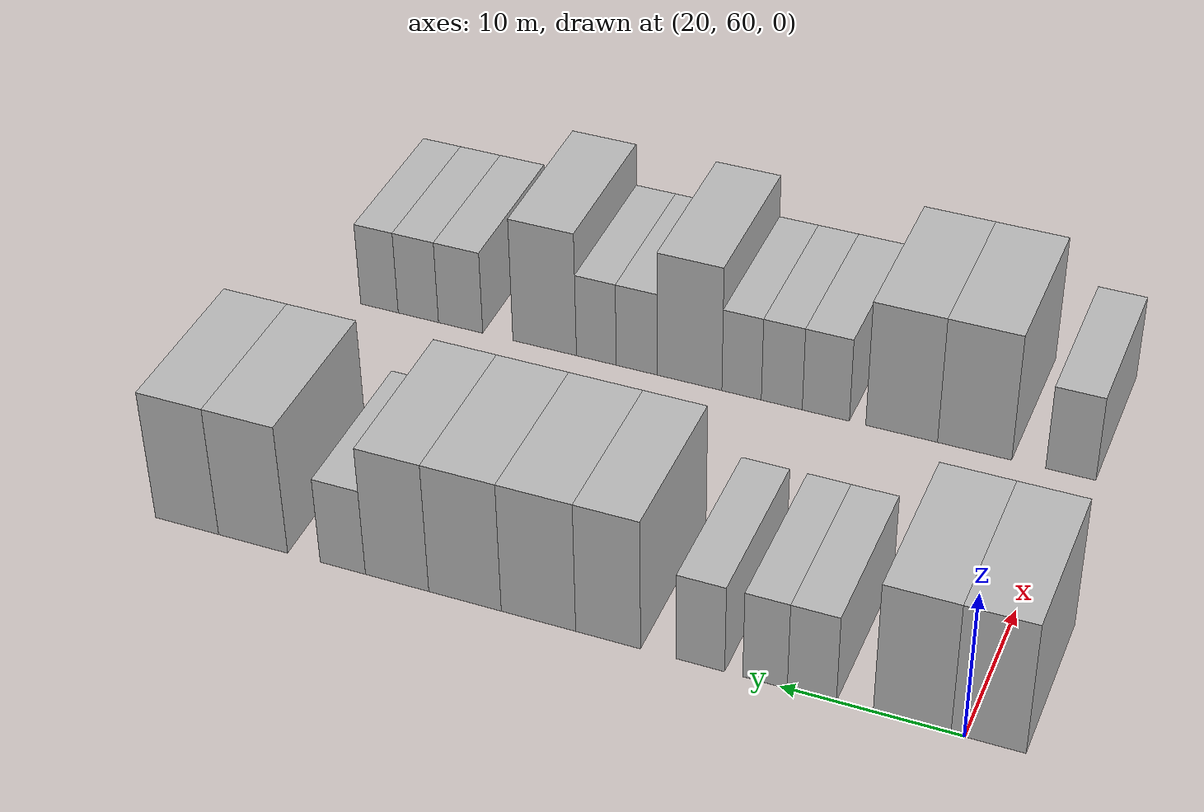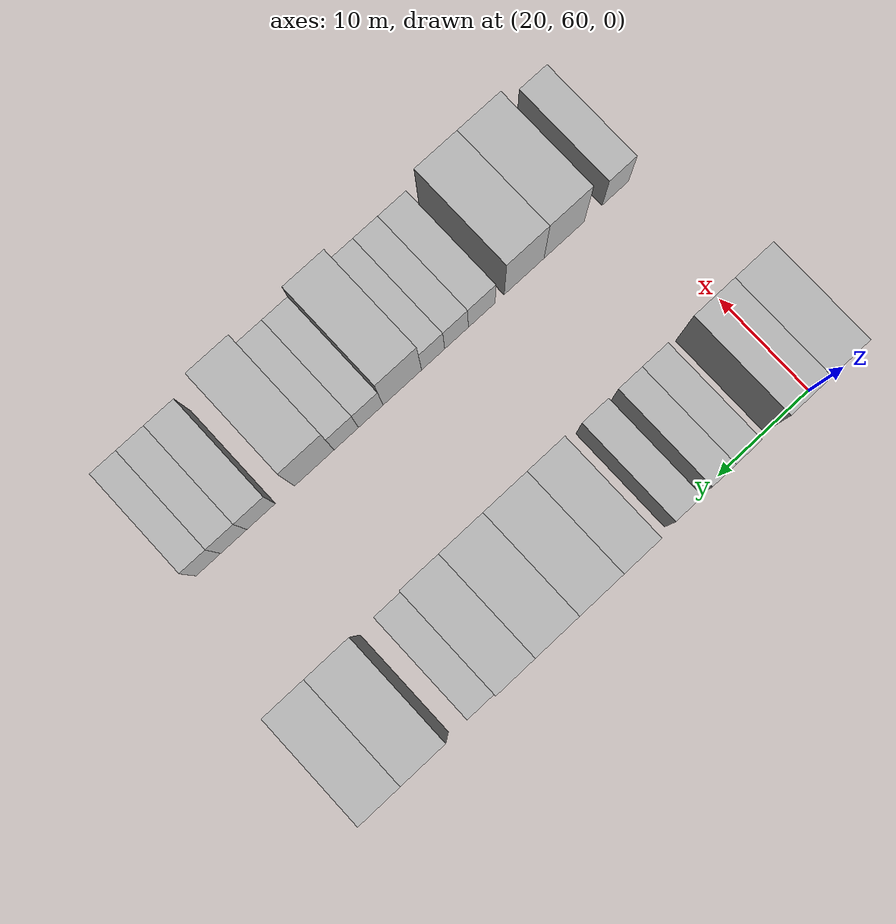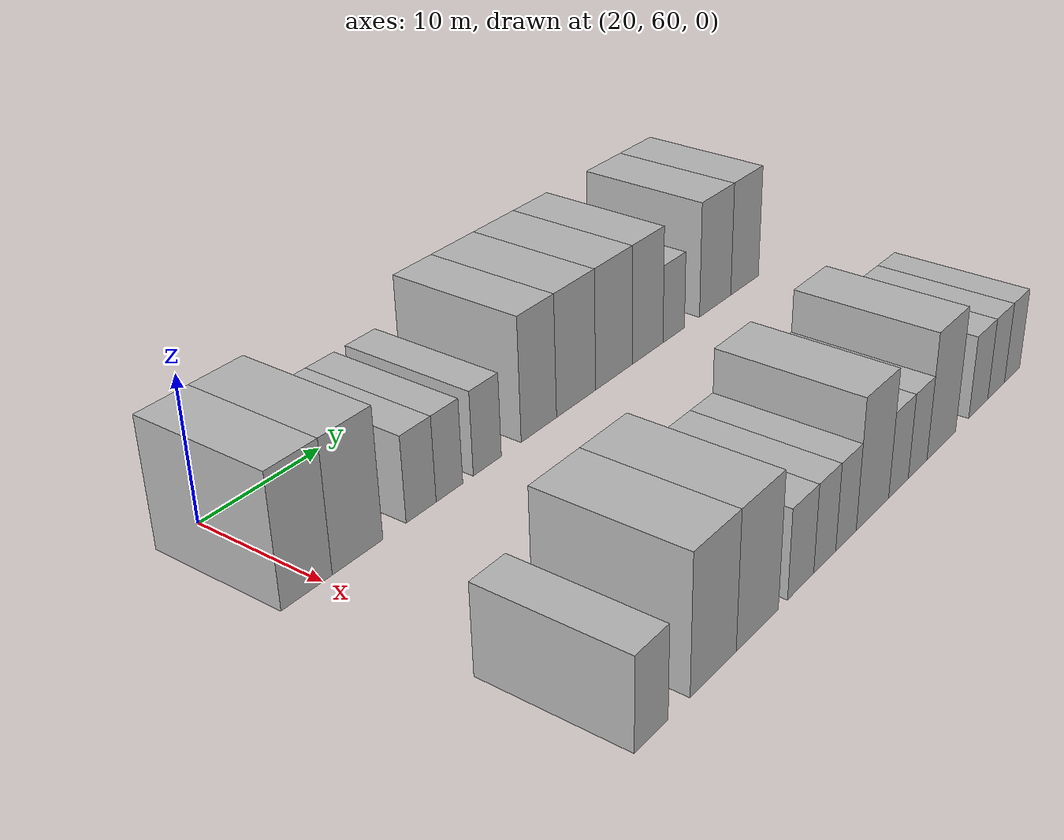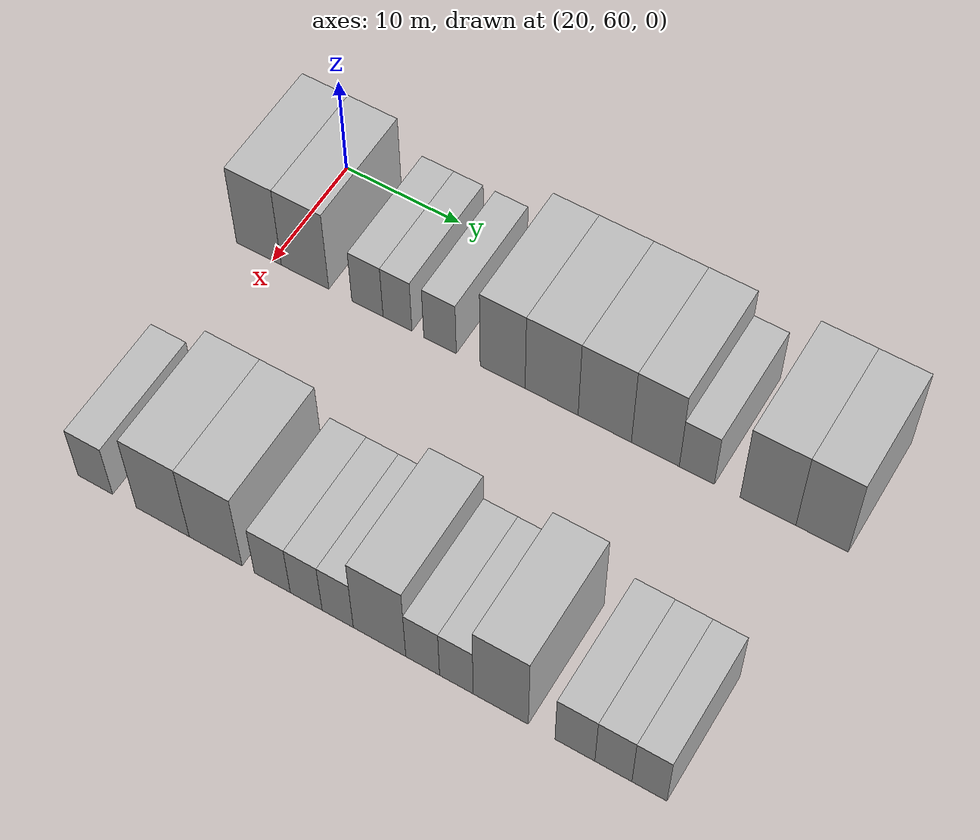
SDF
<sdf version="1.6">
 <world name="default">
  <model name="building_66">
   <static>1</static>
   <pose>25.0000 58.7682 0 0.000000 0.000000 0.000000</pose>
   <link name="link">
    <pose>0 0 4.50 0 0 0</pose>
    <collision name="collision"><geometry><box><size>10.0000 3.9677 9.0000</size></box></geometry></collision>
    <visual name="visual">
     <cast_shadows>0</cast_shadows>
     <geometry><box><size>10.0000 3.9677 9.0000</size></box></geometry>
     <material>
      <script>
       <uri>model://HANNAS_wall/materials/scripts</uri>
       <uri>model://HANNAS_wall/materials/textures</uri>
       <name>vrc/HANNAS_wall</name>
      </script>
     </material>
    </visual>
   </link>
  </model>
  <model name="building_67">
   <static>1</static>
   <pose>25.0000 62.8385 0 0.000000 0.000000 0.000000</pose>
   <link name="link">
    <pose>0 0 4.50 0 0 0</pose>
    <collision name="collision"><geometry><box><size>10.0000 4.1729 9.0000</size></box></geometry></collision>
    <visual name="visual">
     <cast_shadows>0</cast_shadows>
     <geometry><box><size>10.0000 4.1729 9.0000</size></box></geometry>
     <material>
      <script>
       <uri>model://HANNAS_wall/materials/scripts</uri>
       <uri>model://HANNAS_wall/materials/textures</uri>
       <name>vrc/HANNAS_wall</name>
      </script>
     </material>
    </visual>
   </link>
  </model>
  <model name="building_68">
   <static>1</static>
   <pose>25.0000 68.2701 0 0.000000 0.000000 0.000000</pose>
   <link name="link">
    <pose>0 0 3.00 0 0 0</pose>
    <collision name="collision"><geometry><box><size>10.0000 2.6902 6.0000</size></box></geometry></collision>
    <visual name="visual">
     <cast_shadows>0</cast_shadows>
     <geometry><box><size>10.0000 2.6902 6.0000</size></box></geometry>
     <material>
      <script>
       <uri>model://HANNAS_wall/materials/scripts</uri>
       <uri>model://HANNAS_wall/materials/textures</uri>
       <name>vrc/HANNAS_wall</name>
      </script>
     </material>
    </visual>
   </link>
  </model>
  <model name="building_69">
   <static>1</static>
   <pose>25.0000 70.8492 0 0.000000 0.000000 0.000000</pose>
   <link name="link">
    <pose>0 0 3.00 0 0 0</pose>
    <collision name="collision"><geometry><box><size>10.0000 2.4681 6.0000</size></box></geometry></collision>
    <visual name="visual">
     <cast_shadows>0</cast_shadows>
     <geometry><box><size>10.0000 2.4681 6.0000</size></box></geometry>
     <material>
      <script>
       <uri>model://HANNAS_wall/materials/scripts</uri>
       <uri>model://HANNAS_wall/materials/textures</uri>
       <name>vrc/HANNAS_wall</name>
      </script>
     </material>
    </visual>
   </link>
  </model>
  <model name="building_70">
   <static>1</static>
   <pose>25.0000 74.4561 0 0.000000 0.000000 0.000000</pose>
   <link name="link">
    <pose>0 0 3.00 0 0 0</pose>
    <collision name="collision"><geometry><box><size>10.0000 2.7456 6.0000</size></box></geometry></collision>
    <visual name="visual">
     <cast_shadows>0</cast_shadows>
     <geometry><box><size>10.0000 2.7456 6.0000</size></box></geometry>
     <material>
      <script>
       <uri>model://HANNAS_wall/materials/scripts</uri>
       <uri>model://HANNAS_wall/materials/textures</uri>
       <name>vrc/HANNAS_wall</name>
      </script>
     </material>
    </visual>
   </link>
  </model>
  <model name="building_71">
   <static>1</static>
   <pose>25.0000 79.6886 0 0.000000 0.000000 0.000000</pose>
   <link name="link">
    <pose>0 0 4.50 0 0 0</pose>
    <collision name="collision"><geometry><box><size>10.0000 3.7195 9.0000</size></box></geometry></collision>
    <visual name="visual">
     <cast_shadows>0</cast_shadows>
     <geometry><box><size>10.0000 3.7195 9.0000</size></box></geometry>
     <material>
      <script>
       <uri>model://HANNAS_wall/materials/scripts</uri>
       <uri>model://HANNAS_wall/materials/textures</uri>
       <name>vrc/HANNAS_wall</name>
      </script>
     </material>
    </visual>
   </link>
  </model>
  <model name="building_72">
   <static>1</static>
   <pose>25.0000 83.7149 0 0.000000 0.000000 0.000000</pose>
   <link name="link">
    <pose>0 0 4.50 0 0 0</pose>
    <collision name="collision"><geometry><box><size>10.0000 4.3330 9.0000</size></box></geometry></collision>
    <visual name="visual">
     <cast_shadows>0</cast_shadows>
     <geometry><box><size>10.0000 4.3330 9.0000</size></box></geometry>
     <material>
      <script>
       <uri>model://HANNAS_wall/materials/scripts</uri>
       <uri>model://HANNAS_wall/materials/textures</uri>
       <name>vrc/HANNAS_wall</name>
      </script>
     </material>
    </visual>
   </link>
  </model>
  <model name="building_73">
   <static>1</static>
   <pose>25.0000 88.0286 0 0.000000 0.000000 0.000000</pose>
   <link name="link">
    <pose>0 0 4.50 0 0 0</pose>
    <collision name="collision"><geometry><box><size>10.0000 4.2945 9.0000</size></box></geometry></collision>
    <visual name="visual">
     <cast_shadows>0</cast_shadows>
     <geometry><box><size>10.0000 4.2945 9.0000</size></box></geometry>
     <material>
      <script>
       <uri>model://HANNAS_wall/materials/scripts</uri>
       <uri>model://HANNAS_wall/materials/textures</uri>
       <name>vrc/HANNAS_wall</name>
      </script>
     </material>
    </visual>
   </link>
  </model>
  <model name="building_74">
   <static>1</static>
   <pose>25.0000 92.0793 0 0.000000 0.000000 0.000000</pose>
   <link name="link">
    <pose>0 0 4.50 0 0 0</pose>
    <collision name="collision"><geometry><box><size>10.0000 3.8068 9.0000</size></box></geometry></collision>
    <visual name="visual">
     <cast_shadows>0</cast_shadows>
     <geometry><box><size>10.0000 3.8068 9.0000</size></box></geometry>
     <material>
      <script>
       <uri>model://HANNAS_wall/materials/scripts</uri>
       <uri>model://HANNAS_wall/materials/textures</uri>
       <name>vrc/HANNAS_wall</name>
      </script>
     </material>
    </visual>
   </link>
  </model>
  <model name="building_75">
   <static>1</static>
   <pose>25.0000 95.3599 0 0.000000 0.000000 0.000000</pose>
   <link name="link">
    <pose>0 0 3.00 0 0 0</pose>
    <collision name="collision"><geometry><box><size>10.0000 2.7545 6.0000</size></box></geometry></collision>
    <visual name="visual">
     <cast_shadows>0</cast_shadows>
     <geometry><box><size>10.0000 2.7545 6.0000</size></box></geometry>
     <material>
      <script>
       <uri>model://HANNAS_wall/materials/scripts</uri>
       <uri>model://HANNAS_wall/materials/textures</uri>
       <name>vrc/HANNAS_wall</name>
      </script>
     </material>
    </visual>
   </link>
  </model>
  <model name="building_76">
   <static>1</static>
   <pose>25.0000 100.8851 0 0.000000 0.000000 0.000000</pose>
   <link name="link">
    <pose>0 0 4.50 0 0 0</pose>
    <collision name="collision"><geometry><box><size>10.0000 4.2958 9.0000</size></box></geometry></collision>
    <visual name="visual">
     <cast_shadows>0</cast_shadows>
     <geometry><box><size>10.0000 4.2958 9.0000</size></box></geometry>
     <material>
      <script>
       <uri>model://HANNAS_wall/materials/scripts</uri>
       <uri>model://HANNAS_wall/materials/textures</uri>
       <name>vrc/HANNAS_wall</name>
      </script>
     </material>
    </visual>
   </link>
  </model>
  <model name="building_77">
   <static>1</static>
   <pose>25.0000 105.0226 0 0.000000 0.000000 0.000000</pose>
   <link name="link">
    <pose>0 0 4.50 0 0 0</pose>
    <collision name="collision"><geometry><box><size>10.0000 3.9792 9.0000</size></box></geometry></collision>
    <visual name="visual">
     <cast_shadows>0</cast_shadows>
     <geometry><box><size>10.0000 3.9792 9.0000</size></box></geometry>
     <material>
      <script>
       <uri>model://HANNAS_wall/materials/scripts</uri>
       <uri>model://HANNAS_wall/materials/textures</uri>
       <name>vrc/HANNAS_wall</name>
      </script>
     </material>
    </visual>
   </link>
  </model>
  <model name="building_167">
   <static>1</static>
   <pose>47.0000 60.0536 0 0.000000 0.000000 0.000000</pose>
   <link name="link">
    <pose>0 0 3.00 0 0 0</pose>
    <collision name="collision"><geometry><box><size>10.0000 2.9414 6.0000</size></box></geometry></collision>
    <visual name="visual">
     <cast_shadows>0</cast_shadows>
     <geometry><box><size>10.0000 2.9414 6.0000</size></box></geometry>
     <material>
      <script>
       <uri>model://HANNAS_wall/materials/scripts</uri>
       <uri>model://HANNAS_wall/materials/textures</uri>
       <name>vrc/HANNAS_wall</name>
      </script>
     </material>
    </visual>
   </link>
  </model>
  <model name="building_168">
   <static>1</static>
   <pose>47.0000 65.7422 0 0.000000 0.000000 0.000000</pose>
   <link name="link">
    <pose>0 0 4.50 0 0 0</pose>
    <collision name="collision"><geometry><box><size>10.0000 4.4357 9.0000</size></box></geometry></collision>
    <visual name="visual">
     <cast_shadows>0</cast_shadows>
     <geometry><box><size>10.0000 4.4357 9.0000</size></box></geometry>
     <material>
      <script>
       <uri>model://HANNAS_wall/materials/scripts</uri>
       <uri>model://HANNAS_wall/materials/textures</uri>
       <name>vrc/HANNAS_wall</name>
      </script>
     </material>
    </visual>
   </link>
  </model>
  <model name="building_169">
   <static>1</static>
   <pose>47.0000 70.1384 0 0.000000 0.000000 0.000000</pose>
   <link name="link">
    <pose>0 0 4.50 0 0 0</pose>
    <collision name="collision"><geometry><box><size>10.0000 4.3567 9.0000</size></box></geometry></collision>
    <visual name="visual">
     <cast_shadows>0</cast_shadows>
     <geometry><box><size>10.0000 4.3567 9.0000</size></box></geometry>
     <material>
      <script>
       <uri>model://HANNAS_wall/materials/scripts</uri>
       <uri>model://HANNAS_wall/materials/textures</uri>
       <name>vrc/HANNAS_wall</name>
      </script>
     </material>
    </visual>
   </link>
  </model>
  <model name="building_170">
   <static>1</static>
   <pose>47.0000 74.7722 0 0.000000 0.000000 0.000000</pose>
   <link name="link">
    <pose>0 0 3.00 0 0 0</pose>
    <collision name="collision"><geometry><box><size>10.0000 2.9110 6.0000</size></box></geometry></collision>
    <visual name="visual">
     <cast_shadows>0</cast_shadows>
     <geometry><box><size>10.0000 2.9110 6.0000</size></box></geometry>
     <material>
      <script>
       <uri>model://HANNAS_wall/materials/scripts</uri>
       <uri>model://HANNAS_wall/materials/textures</uri>
       <name>vrc/HANNAS_wall</name>
      </script>
     </material>
    </visual>
   </link>
  </model>
  <model name="building_171">
   <static>1</static>
   <pose>47.0000 77.5032 0 0.000000 0.000000 0.000000</pose>
   <link name="link">
    <pose>0 0 3.00 0 0 0</pose>
    <collision name="collision"><geometry><box><size>10.0000 2.5510 6.0000</size></box></geometry></collision>
    <visual name="visual">
     <cast_shadows>0</cast_shadows>
     <geometry><box><size>10.0000 2.5510 6.0000</size></box></geometry>
     <material>
      <script>
       <uri>model://HANNAS_wall/materials/scripts</uri>
       <uri>model://HANNAS_wall/materials/textures</uri>
       <name>vrc/HANNAS_wall</name>
      </script>
     </material>
    </visual>
   </link>
  </model>
  <model name="building_172">
   <static>1</static>
   <pose>47.0000 80.0175 0 0.000000 0.000000 0.000000</pose>
   <link name="link">
    <pose>0 0 3.00 0 0 0</pose>
    <collision name="collision"><geometry><box><size>10.0000 2.4777 6.0000</size></box></geometry></collision>
    <visual name="visual">
     <cast_shadows>0</cast_shadows>
     <geometry><box><size>10.0000 2.4777 6.0000</size></box></geometry>
     <material>
      <script>
       <uri>model://HANNAS_wall/materials/scripts</uri>
       <uri>model://HANNAS_wall/materials/textures</uri>
       <name>vrc/HANNAS_wall</name>
      </script>
     </material>
    </visual>
   </link>
  </model>
  <model name="building_173">
   <static>1</static>
   <pose>47.0000 83.3180 0 0.000000 0.000000 0.000000</pose>
   <link name="link">
    <pose>0 0 4.50 0 0 0</pose>
    <collision name="collision"><geometry><box><size>10.0000 4.1231 9.0000</size></box></geometry></collision>
    <visual name="visual">
     <cast_shadows>0</cast_shadows>
     <geometry><box><size>10.0000 4.1231 9.0000</size></box></geometry>
     <material>
      <script>
       <uri>model://HANNAS_wall/materials/scripts</uri>
       <uri>model://HANNAS_wall/materials/textures</uri>
       <name>vrc/HANNAS_wall</name>
      </script>
     </material>
    </visual>
   </link>
  </model>
  <model name="building_174">
   <static>1</static>
   <pose>47.0000 86.6889 0 0.000000 0.000000 0.000000</pose>
   <link name="link">
    <pose>0 0 3.00 0 0 0</pose>
    <collision name="collision"><geometry><box><size>10.0000 2.6188 6.0000</size></box></geometry></collision>
    <visual name="visual">
     <cast_shadows>0</cast_shadows>
     <geometry><box><size>10.0000 2.6188 6.0000</size></box></geometry>
     <material>
      <script>
       <uri>model://HANNAS_wall/materials/scripts</uri>
       <uri>model://HANNAS_wall/materials/textures</uri>
       <name>vrc/HANNAS_wall</name>
      </script>
     </material>
    </visual>
   </link>
  </model>
  <model name="building_175">
   <static>1</static>
   <pose>47.0000 89.2907 0 0.000000 0.000000 0.000000</pose>
   <link name="link">
    <pose>0 0 3.00 0 0 0</pose>
    <collision name="collision"><geometry><box><size>10.0000 2.5848 6.0000</size></box></geometry></collision>
    <visual name="visual">
     <cast_shadows>0</cast_shadows>
     <geometry><box><size>10.0000 2.5848 6.0000</size></box></geometry>
     <material>
      <script>
       <uri>model://HANNAS_wall/materials/scripts</uri>
       <uri>model://HANNAS_wall/materials/textures</uri>
       <name>vrc/HANNAS_wall</name>
      </script>
     </material>
    </visual>
   </link>
  </model>
  <model name="building_176">
   <static>1</static>
   <pose>47.0000 92.6688 0 0.000000 0.000000 0.000000</pose>
   <link name="link">
    <pose>0 0 4.50 0 0 0</pose>
    <collision name="collision"><geometry><box><size>10.0000 4.1715 9.0000</size></box></geometry></collision>
    <visual name="visual">
     <cast_shadows>0</cast_shadows>
     <geometry><box><size>10.0000 4.1715 9.0000</size></box></geometry>
     <material>
      <script>
       <uri>model://HANNAS_wall/materials/scripts</uri>
       <uri>model://HANNAS_wall/materials/textures</uri>
       <name>vrc/HANNAS_wall</name>
      </script>
     </material>
    </visual>
   </link>
  </model>
  <model name="building_177">
   <static>1</static>
   <pose>47.0000 98.2374 0 0.000000 0.000000 0.000000</pose>
   <link name="link">
    <pose>0 0 3.00 0 0 0</pose>
    <collision name="collision"><geometry><box><size>10.0000 2.9658 6.0000</size></box></geometry></collision>
    <visual name="visual">
     <cast_shadows>0</cast_shadows>
     <geometry><box><size>10.0000 2.9658 6.0000</size></box></geometry>
     <material>
      <script>
       <uri>model://HANNAS_wall/materials/scripts</uri>
       <uri>model://HANNAS_wall/materials/textures</uri>
       <name>vrc/HANNAS_wall</name>
      </script>
     </material>
    </visual>
   </link>
  </model>
  <model name="building_178">
   <static>1</static>
   <pose>47.0000 101.0815 0 0.000000 0.000000 0.000000</pose>
   <link name="link">
    <pose>0 0 3.00 0 0 0</pose>
    <collision name="collision"><geometry><box><size>10.0000 2.7223 6.0000</size></box></geometry></collision>
    <visual name="visual">
     <cast_shadows>0</cast_shadows>
     <geometry><box><size>10.0000 2.7223 6.0000</size></box></geometry>
     <material>
      <script>
       <uri>model://HANNAS_wall/materials/scripts</uri>
       <uri>model://HANNAS_wall/materials/textures</uri>
       <name>vrc/HANNAS_wall</name>
      </script>
     </material>
    </visual>
   </link>
  </model>
  <model name="building_179">
   <static>1</static>
   <pose>47.0000 103.7174 0 0.000000 0.000000 0.000000</pose>
   <link name="link">
    <pose>0 0 3.00 0 0 0</pose>
    <collision name="collision"><geometry><box><size>10.0000 2.5495 6.0000</size></box></geometry></collision>
    <visual name="visual">
     <cast_shadows>0</cast_shadows>
     <geometry><box><size>10.0000 2.5495 6.0000</size></box></geometry>
     <material>
      <script>
       <uri>model://HANNAS_wall/materials/scripts</uri>
       <uri>model://HANNAS_wall/materials/textures</uri>
       <name>vrc/HANNAS_wall</name>
      </script>
     </material>
    </visual>
   </link>
  </model>
 </world>
</sdf>
